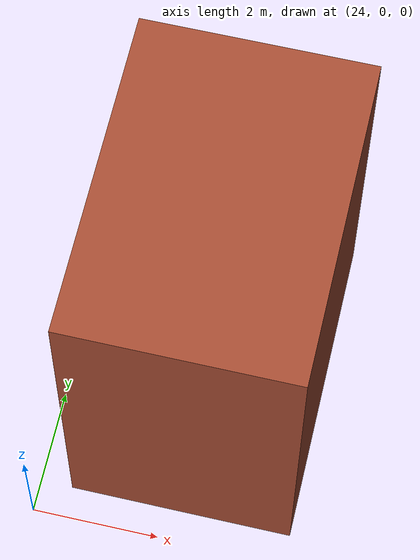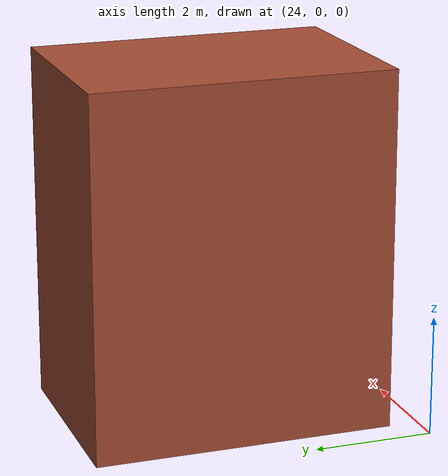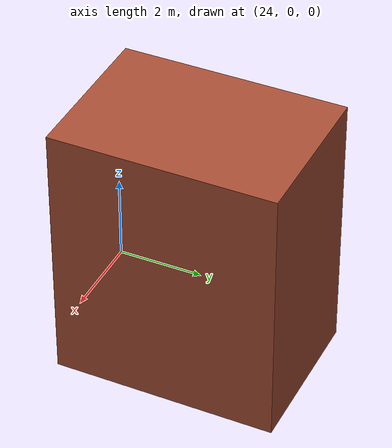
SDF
<?xml version="1.0"?>
<sdf version="1.6">
  <model name="ob_1">
    <pose>0 0 0 0 0 0</pose>
    <static>0</static>
    <link name="element_1_link">
      <pose>26.25 3 3 0 0 0</pose>
      <inertial>
        <pose>26.25 3 3 0 0 0</pose>
        <mass>1</mass>
        <inertia>
          <ixx>0.36</ixx>
          <ixy>0</ixy>
          <ixz>0</ixz>
          <iyy>1.3225</iyy>
          <iyz>0</iyz>
          <izz>0.49</izz>
        </inertia>
      </inertial>

      <collision name="collision">
        <geometry>
          <box>
            <size> 3.5 5 6 </size>
          </box>
        </geometry>
      </collision>

      <visual name="visual">
        <geometry>
          <box>
            <size> 3.5 5 6</size>
          </box>
        </geometry>
         <material>
            <script>
              <uri>file://media/materials/scripts/gazebo.material</uri>
              <name>Gazebo/Bricks</name>
            </script>
          </material>
      </visual>
    </link>

  </model>
</sdf>
